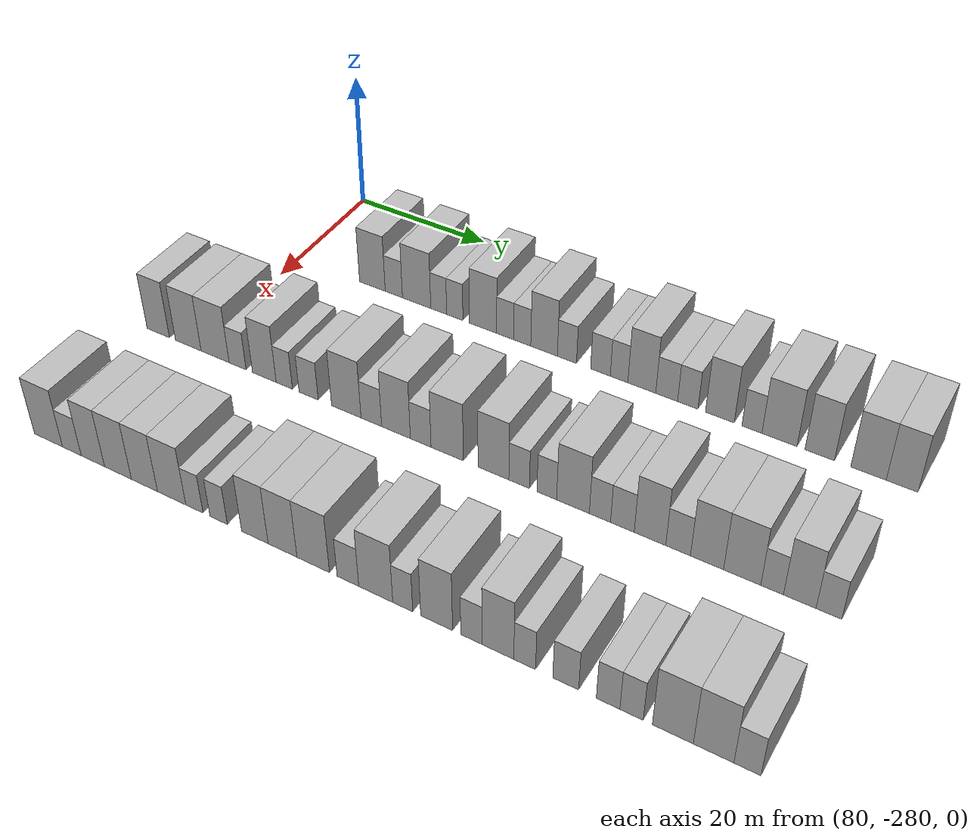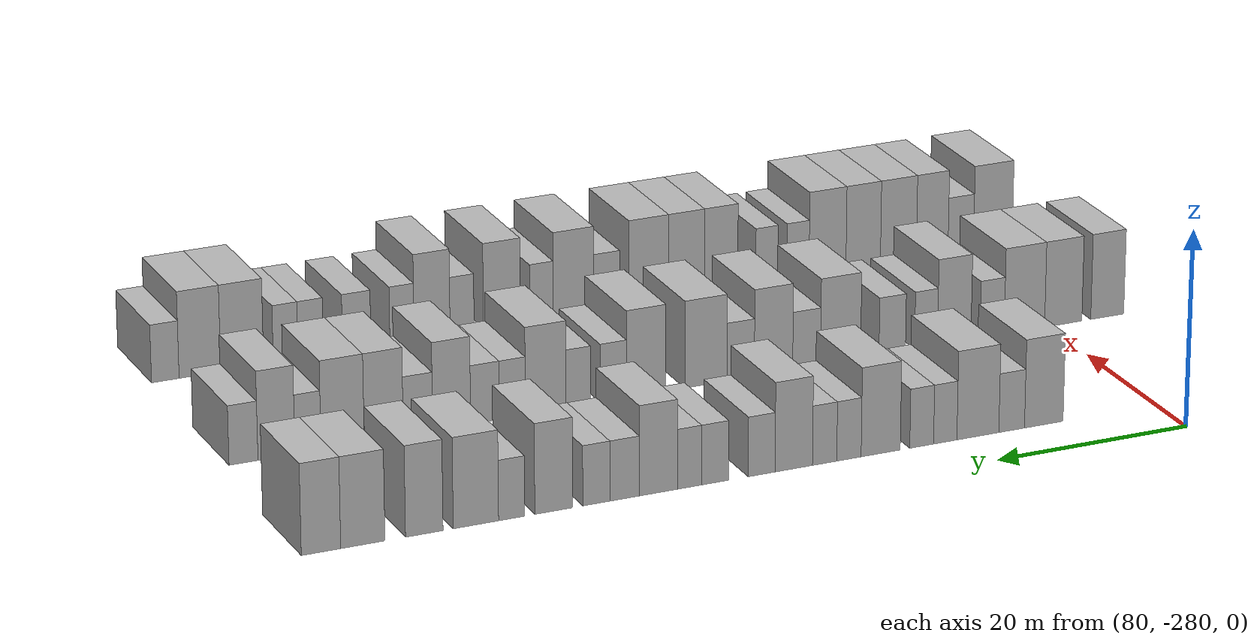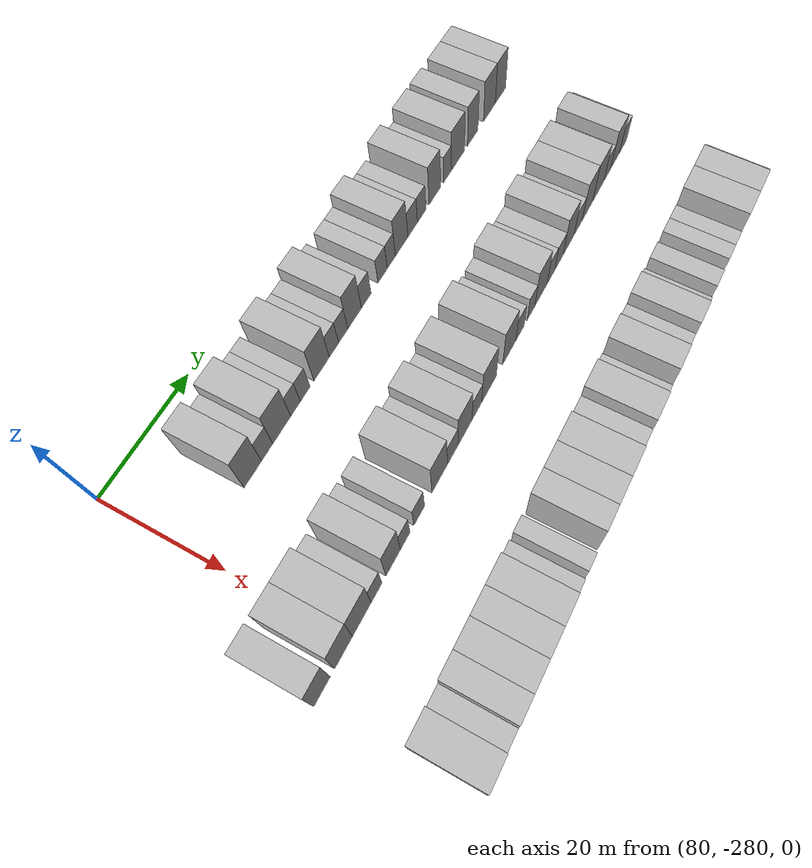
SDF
<sdf version="1.6">
 <world name="default">
  <model name="building_583">
   <static>1</static>
   <pose>91.0000 -267.9013 0 0.000000 0.000000 0.000000</pose>
   <link name="link">
    <pose>0 0 4.50 0 0 0</pose>
    <collision name="collision"><geometry><box><size>10.0000 4.1133 9.0000</size></box></geometry></collision>
    <visual name="visual">
     <cast_shadows>0</cast_shadows>
     <geometry><box><size>10.0000 4.1133 9.0000</size></box></geometry>
     <material>
      <script>
       <uri>model://HANNAS_wall/materials/scripts</uri>
       <uri>model://HANNAS_wall/materials/textures</uri>
       <name>vrc/HANNAS_wall</name>
      </script>
     </material>
    </visual>
   </link>
  </model>
  <model name="building_584">
   <static>1</static>
   <pose>91.0000 -264.4797 0 0.000000 0.000000 0.000000</pose>
   <link name="link">
    <pose>0 0 3.00 0 0 0</pose>
    <collision name="collision"><geometry><box><size>10.0000 2.7299 6.0000</size></box></geometry></collision>
    <visual name="visual">
     <cast_shadows>0</cast_shadows>
     <geometry><box><size>10.0000 2.7299 6.0000</size></box></geometry>
     <material>
      <script>
       <uri>model://HANNAS_wall/materials/scripts</uri>
       <uri>model://HANNAS_wall/materials/textures</uri>
       <name>vrc/HANNAS_wall</name>
      </script>
     </material>
    </visual>
   </link>
  </model>
  <model name="building_585">
   <static>1</static>
   <pose>91.0000 -260.8992 0 0.000000 0.000000 0.000000</pose>
   <link name="link">
    <pose>0 0 4.50 0 0 0</pose>
    <collision name="collision"><geometry><box><size>10.0000 4.4311 9.0000</size></box></geometry></collision>
    <visual name="visual">
     <cast_shadows>0</cast_shadows>
     <geometry><box><size>10.0000 4.4311 9.0000</size></box></geometry>
     <material>
      <script>
       <uri>model://HANNAS_wall/materials/scripts</uri>
       <uri>model://HANNAS_wall/materials/textures</uri>
       <name>vrc/HANNAS_wall</name>
      </script>
     </material>
    </visual>
   </link>
  </model>
  <model name="building_586">
   <static>1</static>
   <pose>91.0000 -257.4568 0 0.000000 0.000000 0.000000</pose>
   <link name="link">
    <pose>0 0 3.00 0 0 0</pose>
    <collision name="collision"><geometry><box><size>10.0000 2.4537 6.0000</size></box></geometry></collision>
    <visual name="visual">
     <cast_shadows>0</cast_shadows>
     <geometry><box><size>10.0000 2.4537 6.0000</size></box></geometry>
     <material>
      <script>
       <uri>model://HANNAS_wall/materials/scripts</uri>
       <uri>model://HANNAS_wall/materials/textures</uri>
       <name>vrc/HANNAS_wall</name>
      </script>
     </material>
    </visual>
   </link>
  </model>
  <model name="building_587">
   <static>1</static>
   <pose>91.0000 -254.9833 0 0.000000 0.000000 0.000000</pose>
   <link name="link">
    <pose>0 0 3.00 0 0 0</pose>
    <collision name="collision"><geometry><box><size>10.0000 2.4933 6.0000</size></box></geometry></collision>
    <visual name="visual">
     <cast_shadows>0</cast_shadows>
     <geometry><box><size>10.0000 2.4933 6.0000</size></box></geometry>
     <material>
      <script>
       <uri>model://HANNAS_wall/materials/scripts</uri>
       <uri>model://HANNAS_wall/materials/textures</uri>
       <name>vrc/HANNAS_wall</name>
      </script>
     </material>
    </visual>
   </link>
  </model>
  <model name="building_588">
   <static>1</static>
   <pose>91.0000 -250.6985 0 0.000000 0.000000 0.000000</pose>
   <link name="link">
    <pose>0 0 4.50 0 0 0</pose>
    <collision name="collision"><geometry><box><size>10.0000 4.0763 9.0000</size></box></geometry></collision>
    <visual name="visual">
     <cast_shadows>0</cast_shadows>
     <geometry><box><size>10.0000 4.0763 9.0000</size></box></geometry>
     <material>
      <script>
       <uri>model://HANNAS_wall/materials/scripts</uri>
       <uri>model://HANNAS_wall/materials/textures</uri>
       <name>vrc/HANNAS_wall</name>
      </script>
     </material>
    </visual>
   </link>
  </model>
  <model name="building_589">
   <static>1</static>
   <pose>91.0000 -247.3971 0 0.000000 0.000000 0.000000</pose>
   <link name="link">
    <pose>0 0 3.00 0 0 0</pose>
    <collision name="collision"><geometry><box><size>10.0000 2.5264 6.0000</size></box></geometry></collision>
    <visual name="visual">
     <cast_shadows>0</cast_shadows>
     <geometry><box><size>10.0000 2.5264 6.0000</size></box></geometry>
     <material>
      <script>
       <uri>model://HANNAS_wall/materials/scripts</uri>
       <uri>model://HANNAS_wall/materials/textures</uri>
       <name>vrc/HANNAS_wall</name>
      </script>
     </material>
    </visual>
   </link>
  </model>
  <model name="building_590">
   <static>1</static>
   <pose>91.0000 -244.8766 0 0.000000 0.000000 0.000000</pose>
   <link name="link">
    <pose>0 0 3.00 0 0 0</pose>
    <collision name="collision"><geometry><box><size>10.0000 2.5146 6.0000</size></box></geometry></collision>
    <visual name="visual">
     <cast_shadows>0</cast_shadows>
     <geometry><box><size>10.0000 2.5146 6.0000</size></box></geometry>
     <material>
      <script>
       <uri>model://HANNAS_wall/materials/scripts</uri>
       <uri>model://HANNAS_wall/materials/textures</uri>
       <name>vrc/HANNAS_wall</name>
      </script>
     </material>
    </visual>
   </link>
  </model>
  <model name="building_591">
   <static>1</static>
   <pose>91.0000 -241.6928 0 0.000000 0.000000 0.000000</pose>
   <link name="link">
    <pose>0 0 4.50 0 0 0</pose>
    <collision name="collision"><geometry><box><size>10.0000 3.8532 9.0000</size></box></geometry></collision>
    <visual name="visual">
     <cast_shadows>0</cast_shadows>
     <geometry><box><size>10.0000 3.8532 9.0000</size></box></geometry>
     <material>
      <script>
       <uri>model://HANNAS_wall/materials/scripts</uri>
       <uri>model://HANNAS_wall/materials/textures</uri>
       <name>vrc/HANNAS_wall</name>
      </script>
     </material>
    </visual>
   </link>
  </model>
  <model name="building_592">
   <static>1</static>
   <pose>91.0000 -238.3920 0 0.000000 0.000000 0.000000</pose>
   <link name="link">
    <pose>0 0 3.00 0 0 0</pose>
    <collision name="collision"><geometry><box><size>10.0000 2.7484 6.0000</size></box></geometry></collision>
    <visual name="visual">
     <cast_shadows>0</cast_shadows>
     <geometry><box><size>10.0000 2.7484 6.0000</size></box></geometry>
     <material>
      <script>
       <uri>model://HANNAS_wall/materials/scripts</uri>
       <uri>model://HANNAS_wall/materials/textures</uri>
       <name>vrc/HANNAS_wall</name>
      </script>
     </material>
    </visual>
   </link>
  </model>
  <model name="building_593">
   <static>1</static>
   <pose>91.0000 -233.6346 0 0.000000 0.000000 0.000000</pose>
   <link name="link">
    <pose>0 0 3.00 0 0 0</pose>
    <collision name="collision"><geometry><box><size>10.0000 2.7663 6.0000</size></box></geometry></collision>
    <visual name="visual">
     <cast_shadows>0</cast_shadows>
     <geometry><box><size>10.0000 2.7663 6.0000</size></box></geometry>
     <material>
      <script>
       <uri>model://HANNAS_wall/materials/scripts</uri>
       <uri>model://HANNAS_wall/materials/textures</uri>
       <name>vrc/HANNAS_wall</name>
      </script>
     </material>
    </visual>
   </link>
  </model>
  <model name="building_594">
   <static>1</static>
   <pose>91.0000 -231.0318 0 0.000000 0.000000 0.000000</pose>
   <link name="link">
    <pose>0 0 3.00 0 0 0</pose>
    <collision name="collision"><geometry><box><size>10.0000 2.4393 6.0000</size></box></geometry></collision>
    <visual name="visual">
     <cast_shadows>0</cast_shadows>
     <geometry><box><size>10.0000 2.4393 6.0000</size></box></geometry>
     <material>
      <script>
       <uri>model://HANNAS_wall/materials/scripts</uri>
       <uri>model://HANNAS_wall/materials/textures</uri>
       <name>vrc/HANNAS_wall</name>
      </script>
     </material>
    </visual>
   </link>
  </model>
  <model name="building_595">
   <static>1</static>
   <pose>91.0000 -227.8929 0 0.000000 0.000000 0.000000</pose>
   <link name="link">
    <pose>0 0 4.50 0 0 0</pose>
    <collision name="collision"><geometry><box><size>10.0000 3.8385 9.0000</size></box></geometry></collision>
    <visual name="visual">
     <cast_shadows>0</cast_shadows>
     <geometry><box><size>10.0000 3.8385 9.0000</size></box></geometry>
     <material>
      <script>
       <uri>model://HANNAS_wall/materials/scripts</uri>
       <uri>model://HANNAS_wall/materials/textures</uri>
       <name>vrc/HANNAS_wall</name>
      </script>
     </material>
    </visual>
   </link>
  </model>
  <model name="building_596">
   <static>1</static>
   <pose>91.0000 -224.5005 0 0.000000 0.000000 0.000000</pose>
   <link name="link">
    <pose>0 0 3.00 0 0 0</pose>
    <collision name="collision"><geometry><box><size>10.0000 2.9462 6.0000</size></box></geometry></collision>
    <visual name="visual">
     <cast_shadows>0</cast_shadows>
     <geometry><box><size>10.0000 2.9462 6.0000</size></box></geometry>
     <material>
      <script>
       <uri>model://HANNAS_wall/materials/scripts</uri>
       <uri>model://HANNAS_wall/materials/textures</uri>
       <name>vrc/HANNAS_wall</name>
      </script>
     </material>
    </visual>
   </link>
  </model>
  <model name="building_597">
   <static>1</static>
   <pose>91.0000 -221.6628 0 0.000000 0.000000 0.000000</pose>
   <link name="link">
    <pose>0 0 3.00 0 0 0</pose>
    <collision name="collision"><geometry><box><size>10.0000 2.7293 6.0000</size></box></geometry></collision>
    <visual name="visual">
     <cast_shadows>0</cast_shadows>
     <geometry><box><size>10.0000 2.7293 6.0000</size></box></geometry>
     <material>
      <script>
       <uri>model://HANNAS_wall/materials/scripts</uri>
       <uri>model://HANNAS_wall/materials/textures</uri>
       <name>vrc/HANNAS_wall</name>
      </script>
     </material>
    </visual>
   </link>
  </model>
  <model name="building_598">
   <static>1</static>
   <pose>91.0000 -217.4084 0 0.000000 0.000000 0.000000</pose>
   <link name="link">
    <pose>0 0 4.50 0 0 0</pose>
    <collision name="collision"><geometry><box><size>10.0000 3.7795 9.0000</size></box></geometry></collision>
    <visual name="visual">
     <cast_shadows>0</cast_shadows>
     <geometry><box><size>10.0000 3.7795 9.0000</size></box></geometry>
     <material>
      <script>
       <uri>model://HANNAS_wall/materials/scripts</uri>
       <uri>model://HANNAS_wall/materials/textures</uri>
       <name>vrc/HANNAS_wall</name>
      </script>
     </material>
    </visual>
   </link>
  </model>
  <model name="building_599">
   <static>1</static>
   <pose>91.0000 -213.2256 0 0.000000 0.000000 0.000000</pose>
   <link name="link">
    <pose>0 0 3.00 0 0 0</pose>
    <collision name="collision"><geometry><box><size>10.0000 2.5861 6.0000</size></box></geometry></collision>
    <visual name="visual">
     <cast_shadows>0</cast_shadows>
     <geometry><box><size>10.0000 2.5861 6.0000</size></box></geometry>
     <material>
      <script>
       <uri>model://HANNAS_wall/materials/scripts</uri>
       <uri>model://HANNAS_wall/materials/textures</uri>
       <name>vrc/HANNAS_wall</name>
      </script>
     </material>
    </visual>
   </link>
  </model>
  <model name="building_600">
   <static>1</static>
   <pose>91.0000 -209.7005 0 0.000000 0.000000 0.000000</pose>
   <link name="link">
    <pose>0 0 4.50 0 0 0</pose>
    <collision name="collision"><geometry><box><size>10.0000 4.4641 9.0000</size></box></geometry></collision>
    <visual name="visual">
     <cast_shadows>0</cast_shadows>
     <geometry><box><size>10.0000 4.4641 9.0000</size></box></geometry>
     <material>
      <script>
       <uri>model://HANNAS_wall/materials/scripts</uri>
       <uri>model://HANNAS_wall/materials/textures</uri>
       <name>vrc/HANNAS_wall</name>
      </script>
     </material>
    </visual>
   </link>
  </model>
  <model name="building_601">
   <static>1</static>
   <pose>91.0000 -204.6339 0 0.000000 0.000000 0.000000</pose>
   <link name="link">
    <pose>0 0 4.50 0 0 0</pose>
    <collision name="collision"><geometry><box><size>10.0000 3.6690 9.0000</size></box></geometry></collision>
    <visual name="visual">
     <cast_shadows>0</cast_shadows>
     <geometry><box><size>10.0000 3.6690 9.0000</size></box></geometry>
     <material>
      <script>
       <uri>model://HANNAS_wall/materials/scripts</uri>
       <uri>model://HANNAS_wall/materials/textures</uri>
       <name>vrc/HANNAS_wall</name>
      </script>
     </material>
    </visual>
   </link>
  </model>
  <model name="building_602">
   <static>1</static>
   <pose>91.0000 -198.6547 0 0.000000 0.000000 0.000000</pose>
   <link name="link">
    <pose>0 0 4.50 0 0 0</pose>
    <collision name="collision"><geometry><box><size>10.0000 4.2894 9.0000</size></box></geometry></collision>
    <visual name="visual">
     <cast_shadows>0</cast_shadows>
     <geometry><box><size>10.0000 4.2894 9.0000</size></box></geometry>
     <material>
      <script>
       <uri>model://HANNAS_wall/materials/scripts</uri>
       <uri>model://HANNAS_wall/materials/textures</uri>
       <name>vrc/HANNAS_wall</name>
      </script>
     </material>
    </visual>
   </link>
  </model>
  <model name="building_603">
   <static>1</static>
   <pose>91.0000 -194.6099 0 0.000000 0.000000 0.000000</pose>
   <link name="link">
    <pose>0 0 4.50 0 0 0</pose>
    <collision name="collision"><geometry><box><size>10.0000 3.8003 9.0000</size></box></geometry></collision>
    <visual name="visual">
     <cast_shadows>0</cast_shadows>
     <geometry><box><size>10.0000 3.8003 9.0000</size></box></geometry>
     <material>
      <script>
       <uri>model://HANNAS_wall/materials/scripts</uri>
       <uri>model://HANNAS_wall/materials/textures</uri>
       <name>vrc/HANNAS_wall</name>
      </script>
     </material>
    </visual>
   </link>
  </model>
  <model name="building_780">
   <static>1</static>
   <pose>113.0000 -286.4278 0 0.000000 0.000000 0.000000</pose>
   <link name="link">
    <pose>0 0 4.50 0 0 0</pose>
    <collision name="collision"><geometry><box><size>10.0000 3.6945 9.0000</size></box></geometry></collision>
    <visual name="visual">
     <cast_shadows>0</cast_shadows>
     <geometry><box><size>10.0000 3.6945 9.0000</size></box></geometry>
     <material>
      <script>
       <uri>model://HANNAS_wall/materials/scripts</uri>
       <uri>model://HANNAS_wall/materials/textures</uri>
       <name>vrc/HANNAS_wall</name>
      </script>
     </material>
    </visual>
   </link>
  </model>
  <model name="building_781">
   <static>1</static>
   <pose>113.0000 -281.5056 0 0.000000 0.000000 0.000000</pose>
   <link name="link">
    <pose>0 0 4.50 0 0 0</pose>
    <collision name="collision"><geometry><box><size>10.0000 4.1500 9.0000</size></box></geometry></collision>
    <visual name="visual">
     <cast_shadows>0</cast_shadows>
     <geometry><box><size>10.0000 4.1500 9.0000</size></box></geometry>
     <material>
      <script>
       <uri>model://HANNAS_wall/materials/scripts</uri>
       <uri>model://HANNAS_wall/materials/textures</uri>
       <name>vrc/HANNAS_wall</name>
      </script>
     </material>
    </visual>
   </link>
  </model>
  <model name="building_782">
   <static>1</static>
   <pose>113.0000 -277.1887 0 0.000000 0.000000 0.000000</pose>
   <link name="link">
    <pose>0 0 4.50 0 0 0</pose>
    <collision name="collision"><geometry><box><size>10.0000 4.4838 9.0000</size></box></geometry></collision>
    <visual name="visual">
     <cast_shadows>0</cast_shadows>
     <geometry><box><size>10.0000 4.4838 9.0000</size></box></geometry>
     <material>
      <script>
       <uri>model://HANNAS_wall/materials/scripts</uri>
       <uri>model://HANNAS_wall/materials/textures</uri>
       <name>vrc/HANNAS_wall</name>
      </script>
     </material>
    </visual>
   </link>
  </model>
  <model name="building_783">
   <static>1</static>
   <pose>113.0000 -273.6108 0 0.000000 0.000000 0.000000</pose>
   <link name="link">
    <pose>0 0 3.00 0 0 0</pose>
    <collision name="collision"><geometry><box><size>10.0000 2.6721 6.0000</size></box></geometry></collision>
    <visual name="visual">
     <cast_shadows>0</cast_shadows>
     <geometry><box><size>10.0000 2.6721 6.0000</size></box></geometry>
     <material>
      <script>
       <uri>model://HANNAS_wall/materials/scripts</uri>
       <uri>model://HANNAS_wall/materials/textures</uri>
       <name>vrc/HANNAS_wall</name>
      </script>
     </material>
    </visual>
   </link>
  </model>
  <model name="building_784">
   <static>1</static>
   <pose>113.0000 -269.4401 0 0.000000 0.000000 0.000000</pose>
   <link name="link">
    <pose>0 0 4.50 0 0 0</pose>
    <collision name="collision"><geometry><box><size>10.0000 3.6693 9.0000</size></box></geometry></collision>
    <visual name="visual">
     <cast_shadows>0</cast_shadows>
     <geometry><box><size>10.0000 3.6693 9.0000</size></box></geometry>
     <material>
      <script>
       <uri>model://HANNAS_wall/materials/scripts</uri>
       <uri>model://HANNAS_wall/materials/textures</uri>
       <name>vrc/HANNAS_wall</name>
      </script>
     </material>
    </visual>
   </link>
  </model>
  <model name="building_785">
   <static>1</static>
   <pose>113.0000 -266.3569 0 0.000000 0.000000 0.000000</pose>
   <link name="link">
    <pose>0 0 3.00 0 0 0</pose>
    <collision name="collision"><geometry><box><size>10.0000 2.4971 6.0000</size></box></geometry></collision>
    <visual name="visual">
     <cast_shadows>0</cast_shadows>
     <geometry><box><size>10.0000 2.4971 6.0000</size></box></geometry>
     <material>
      <script>
       <uri>model://HANNAS_wall/materials/scripts</uri>
       <uri>model://HANNAS_wall/materials/textures</uri>
       <name>vrc/HANNAS_wall</name>
      </script>
     </material>
    </visual>
   </link>
  </model>
  <model name="building_786">
   <static>1</static>
   <pose>113.0000 -262.6695 0 0.000000 0.000000 0.000000</pose>
   <link name="link">
    <pose>0 0 3.00 0 0 0</pose>
    <collision name="collision"><geometry><box><size>10.0000 2.8777 6.0000</size></box></geometry></collision>
    <visual name="visual">
     <cast_shadows>0</cast_shadows>
     <geometry><box><size>10.0000 2.8777 6.0000</size></box></geometry>
     <material>
      <script>
       <uri>model://HANNAS_wall/materials/scripts</uri>
       <uri>model://HANNAS_wall/materials/textures</uri>
       <name>vrc/HANNAS_wall</name>
      </script>
     </material>
    </visual>
   </link>
  </model>
  <model name="building_787">
   <static>1</static>
   <pose>113.0000 -257.0691 0 0.000000 0.000000 0.000000</pose>
   <link name="link">
    <pose>0 0 4.50 0 0 0</pose>
    <collision name="collision"><geometry><box><size>10.0000 4.3231 9.0000</size></box></geometry></collision>
    <visual name="visual">
     <cast_shadows>0</cast_shadows>
     <geometry><box><size>10.0000 4.3231 9.0000</size></box></geometry>
     <material>
      <script>
       <uri>model://HANNAS_wall/materials/scripts</uri>
       <uri>model://HANNAS_wall/materials/textures</uri>
       <name>vrc/HANNAS_wall</name>
      </script>
     </material>
    </visual>
   </link>
  </model>
  <model name="building_788">
   <static>1</static>
   <pose>113.0000 -253.4135 0 0.000000 0.000000 0.000000</pose>
   <link name="link">
    <pose>0 0 3.00 0 0 0</pose>
    <collision name="collision"><geometry><box><size>10.0000 2.9880 6.0000</size></box></geometry></collision>
    <visual name="visual">
     <cast_shadows>0</cast_shadows>
     <geometry><box><size>10.0000 2.9880 6.0000</size></box></geometry>
     <material>
      <script>
       <uri>model://HANNAS_wall/materials/scripts</uri>
       <uri>model://HANNAS_wall/materials/textures</uri>
       <name>vrc/HANNAS_wall</name>
      </script>
     </material>
    </visual>
   </link>
  </model>
  <model name="building_789">
   <static>1</static>
   <pose>113.0000 -249.8680 0 0.000000 0.000000 0.000000</pose>
   <link name="link">
    <pose>0 0 4.50 0 0 0</pose>
    <collision name="collision"><geometry><box><size>10.0000 4.1031 9.0000</size></box></geometry></collision>
    <visual name="visual">
     <cast_shadows>0</cast_shadows>
     <geometry><box><size>10.0000 4.1031 9.0000</size></box></geometry>
     <material>
      <script>
       <uri>model://HANNAS_wall/materials/scripts</uri>
       <uri>model://HANNAS_wall/materials/textures</uri>
       <name>vrc/HANNAS_wall</name>
      </script>
     </material>
    </visual>
   </link>
  </model>
  <model name="building_790">
   <static>1</static>
   <pose>113.0000 -246.3647 0 0.000000 0.000000 0.000000</pose>
   <link name="link">
    <pose>0 0 3.00 0 0 0</pose>
    <collision name="collision"><geometry><box><size>10.0000 2.9034 6.0000</size></box></geometry></collision>
    <visual name="visual">
     <cast_shadows>0</cast_shadows>
     <geometry><box><size>10.0000 2.9034 6.0000</size></box></geometry>
     <material>
      <script>
       <uri>model://HANNAS_wall/materials/scripts</uri>
       <uri>model://HANNAS_wall/materials/textures</uri>
       <name>vrc/HANNAS_wall</name>
      </script>
     </material>
    </visual>
   </link>
  </model>
  <model name="building_791">
   <static>1</static>
   <pose>113.0000 -242.6782 0 0.000000 0.000000 0.000000</pose>
   <link name="link">
    <pose>0 0 4.50 0 0 0</pose>
    <collision name="collision"><geometry><box><size>10.0000 4.4696 9.0000</size></box></geometry></collision>
    <visual name="visual">
     <cast_shadows>0</cast_shadows>
     <geometry><box><size>10.0000 4.4696 9.0000</size></box></geometry>
     <material>
      <script>
       <uri>model://HANNAS_wall/materials/scripts</uri>
       <uri>model://HANNAS_wall/materials/textures</uri>
       <name>vrc/HANNAS_wall</name>
      </script>
     </material>
    </visual>
   </link>
  </model>
  <model name="building_792">
   <static>1</static>
   <pose>113.0000 -236.3678 0 0.000000 0.000000 0.000000</pose>
   <link name="link">
    <pose>0 0 4.50 0 0 0</pose>
    <collision name="collision"><geometry><box><size>10.0000 4.1512 9.0000</size></box></geometry></collision>
    <visual name="visual">
     <cast_shadows>0</cast_shadows>
     <geometry><box><size>10.0000 4.1512 9.0000</size></box></geometry>
     <material>
      <script>
       <uri>model://HANNAS_wall/materials/scripts</uri>
       <uri>model://HANNAS_wall/materials/textures</uri>
       <name>vrc/HANNAS_wall</name>
      </script>
     </material>
    </visual>
   </link>
  </model>
  <model name="building_793">
   <static>1</static>
   <pose>113.0000 -232.9316 0 0.000000 0.000000 0.000000</pose>
   <link name="link">
    <pose>0 0 3.00 0 0 0</pose>
    <collision name="collision"><geometry><box><size>10.0000 2.7214 6.0000</size></box></geometry></collision>
    <visual name="visual">
     <cast_shadows>0</cast_shadows>
     <geometry><box><size>10.0000 2.7214 6.0000</size></box></geometry>
     <material>
      <script>
       <uri>model://HANNAS_wall/materials/scripts</uri>
       <uri>model://HANNAS_wall/materials/textures</uri>
       <name>vrc/HANNAS_wall</name>
      </script>
     </material>
    </visual>
   </link>
  </model>
  <model name="building_794">
   <static>1</static>
   <pose>113.0000 -229.2943 0 0.000000 0.000000 0.000000</pose>
   <link name="link">
    <pose>0 0 3.00 0 0 0</pose>
    <collision name="collision"><geometry><box><size>10.0000 2.5532 6.0000</size></box></geometry></collision>
    <visual name="visual">
     <cast_shadows>0</cast_shadows>
     <geometry><box><size>10.0000 2.5532 6.0000</size></box></geometry>
     <material>
      <script>
       <uri>model://HANNAS_wall/materials/scripts</uri>
       <uri>model://HANNAS_wall/materials/textures</uri>
       <name>vrc/HANNAS_wall</name>
      </script>
     </material>
    </visual>
   </link>
  </model>
  <model name="building_795">
   <static>1</static>
   <pose>113.0000 -225.9085 0 0.000000 0.000000 0.000000</pose>
   <link name="link">
    <pose>0 0 4.50 0 0 0</pose>
    <collision name="collision"><geometry><box><size>10.0000 4.2183 9.0000</size></box></geometry></collision>
    <visual name="visual">
     <cast_shadows>0</cast_shadows>
     <geometry><box><size>10.0000 4.2183 9.0000</size></box></geometry>
     <material>
      <script>
       <uri>model://HANNAS_wall/materials/scripts</uri>
       <uri>model://HANNAS_wall/materials/textures</uri>
       <name>vrc/HANNAS_wall</name>
      </script>
     </material>
    </visual>
   </link>
  </model>
  <model name="building_796">
   <static>1</static>
   <pose>113.0000 -222.4591 0 0.000000 0.000000 0.000000</pose>
   <link name="link">
    <pose>0 0 3.00 0 0 0</pose>
    <collision name="collision"><geometry><box><size>10.0000 2.6805 6.0000</size></box></geometry></collision>
    <visual name="visual">
     <cast_shadows>0</cast_shadows>
     <geometry><box><size>10.0000 2.6805 6.0000</size></box></geometry>
     <material>
      <script>
       <uri>model://HANNAS_wall/materials/scripts</uri>
       <uri>model://HANNAS_wall/materials/textures</uri>
       <name>vrc/HANNAS_wall</name>
      </script>
     </material>
    </visual>
   </link>
  </model>
  <model name="building_797">
   <static>1</static>
   <pose>113.0000 -219.6409 0 0.000000 0.000000 0.000000</pose>
   <link name="link">
    <pose>0 0 3.00 0 0 0</pose>
    <collision name="collision"><geometry><box><size>10.0000 2.9559 6.0000</size></box></geometry></collision>
    <visual name="visual">
     <cast_shadows>0</cast_shadows>
     <geometry><box><size>10.0000 2.9559 6.0000</size></box></geometry>
     <material>
      <script>
       <uri>model://HANNAS_wall/materials/scripts</uri>
       <uri>model://HANNAS_wall/materials/textures</uri>
       <name>vrc/HANNAS_wall</name>
      </script>
     </material>
    </visual>
   </link>
  </model>
  <model name="building_798">
   <static>1</static>
   <pose>113.0000 -216.2234 0 0.000000 0.000000 0.000000</pose>
   <link name="link">
    <pose>0 0 4.50 0 0 0</pose>
    <collision name="collision"><geometry><box><size>10.0000 3.8791 9.0000</size></box></geometry></collision>
    <visual name="visual">
     <cast_shadows>0</cast_shadows>
     <geometry><box><size>10.0000 3.8791 9.0000</size></box></geometry>
     <material>
      <script>
       <uri>model://HANNAS_wall/materials/scripts</uri>
       <uri>model://HANNAS_wall/materials/textures</uri>
       <name>vrc/HANNAS_wall</name>
      </script>
     </material>
    </visual>
   </link>
  </model>
  <model name="building_799">
   <static>1</static>
   <pose>113.0000 -212.7860 0 0.000000 0.000000 0.000000</pose>
   <link name="link">
    <pose>0 0 3.00 0 0 0</pose>
    <collision name="collision"><geometry><box><size>10.0000 2.9958 6.0000</size></box></geometry></collision>
    <visual name="visual">
     <cast_shadows>0</cast_shadows>
     <geometry><box><size>10.0000 2.9958 6.0000</size></box></geometry>
     <material>
      <script>
       <uri>model://HANNAS_wall/materials/scripts</uri>
       <uri>model://HANNAS_wall/materials/textures</uri>
       <name>vrc/HANNAS_wall</name>
      </script>
     </material>
    </visual>
   </link>
  </model>
  <model name="building_800">
   <static>1</static>
   <pose>113.0000 -209.3136 0 0.000000 0.000000 0.000000</pose>
   <link name="link">
    <pose>0 0 4.50 0 0 0</pose>
    <collision name="collision"><geometry><box><size>10.0000 3.9488 9.0000</size></box></geometry></collision>
    <visual name="visual">
     <cast_shadows>0</cast_shadows>
     <geometry><box><size>10.0000 3.9488 9.0000</size></box></geometry>
     <material>
      <script>
       <uri>model://HANNAS_wall/materials/scripts</uri>
       <uri>model://HANNAS_wall/materials/textures</uri>
       <name>vrc/HANNAS_wall</name>
      </script>
     </material>
    </visual>
   </link>
  </model>
  <model name="building_801">
   <static>1</static>
   <pose>113.0000 -205.1659 0 0.000000 0.000000 0.000000</pose>
   <link name="link">
    <pose>0 0 4.50 0 0 0</pose>
    <collision name="collision"><geometry><box><size>10.0000 4.3468 9.0000</size></box></geometry></collision>
    <visual name="visual">
     <cast_shadows>0</cast_shadows>
     <geometry><box><size>10.0000 4.3468 9.0000</size></box></geometry>
     <material>
      <script>
       <uri>model://HANNAS_wall/materials/scripts</uri>
       <uri>model://HANNAS_wall/materials/textures</uri>
       <name>vrc/HANNAS_wall</name>
      </script>
     </material>
    </visual>
   </link>
  </model>
  <model name="building_802">
   <static>1</static>
   <pose>113.0000 -201.6856 0 0.000000 0.000000 0.000000</pose>
   <link name="link">
    <pose>0 0 3.00 0 0 0</pose>
    <collision name="collision"><geometry><box><size>10.0000 2.6137 6.0000</size></box></geometry></collision>
    <visual name="visual">
     <cast_shadows>0</cast_shadows>
     <geometry><box><size>10.0000 2.6137 6.0000</size></box></geometry>
     <material>
      <script>
       <uri>model://HANNAS_wall/materials/scripts</uri>
       <uri>model://HANNAS_wall/materials/textures</uri>
       <name>vrc/HANNAS_wall</name>
      </script>
     </material>
    </visual>
   </link>
  </model>
  <model name="building_803">
   <static>1</static>
   <pose>113.0000 -198.5321 0 0.000000 0.000000 0.000000</pose>
   <link name="link">
    <pose>0 0 4.50 0 0 0</pose>
    <collision name="collision"><geometry><box><size>10.0000 3.6933 9.0000</size></box></geometry></collision>
    <visual name="visual">
     <cast_shadows>0</cast_shadows>
     <geometry><box><size>10.0000 3.6933 9.0000</size></box></geometry>
     <material>
      <script>
       <uri>model://HANNAS_wall/materials/scripts</uri>
       <uri>model://HANNAS_wall/materials/textures</uri>
       <name>vrc/HANNAS_wall</name>
      </script>
     </material>
    </visual>
   </link>
  </model>
  <model name="building_804">
   <static>1</static>
   <pose>113.0000 -195.2496 0 0.000000 0.000000 0.000000</pose>
   <link name="link">
    <pose>0 0 3.00 0 0 0</pose>
    <collision name="collision"><geometry><box><size>10.0000 2.8719 6.0000</size></box></geometry></collision>
    <visual name="visual">
     <cast_shadows>0</cast_shadows>
     <geometry><box><size>10.0000 2.8719 6.0000</size></box></geometry>
     <material>
      <script>
       <uri>model://HANNAS_wall/materials/scripts</uri>
       <uri>model://HANNAS_wall/materials/textures</uri>
       <name>vrc/HANNAS_wall</name>
      </script>
     </material>
    </visual>
   </link>
  </model>
  <model name="building_967">
   <static>1</static>
   <pose>135.0000 -284.9059 0 0.000000 0.000000 0.000000</pose>
   <link name="link">
    <pose>0 0 4.50 0 0 0</pose>
    <collision name="collision"><geometry><box><size>10.0000 4.4395 9.0000</size></box></geometry></collision>
    <visual name="visual">
     <cast_shadows>0</cast_shadows>
     <geometry><box><size>10.0000 4.4395 9.0000</size></box></geometry>
     <material>
      <script>
       <uri>model://HANNAS_wall/materials/scripts</uri>
       <uri>model://HANNAS_wall/materials/textures</uri>
       <name>vrc/HANNAS_wall</name>
      </script>
     </material>
    </visual>
   </link>
  </model>
  <model name="building_968">
   <static>1</static>
   <pose>135.0000 -281.2293 0 0.000000 0.000000 0.000000</pose>
   <link name="link">
    <pose>0 0 3.00 0 0 0</pose>
    <collision name="collision"><geometry><box><size>10.0000 2.9136 6.0000</size></box></geometry></collision>
    <visual name="visual">
     <cast_shadows>0</cast_shadows>
     <geometry><box><size>10.0000 2.9136 6.0000</size></box></geometry>
     <material>
      <script>
       <uri>model://HANNAS_wall/materials/scripts</uri>
       <uri>model://HANNAS_wall/materials/textures</uri>
       <name>vrc/HANNAS_wall</name>
      </script>
     </material>
    </visual>
   </link>
  </model>
  <model name="building_969">
   <static>1</static>
   <pose>135.0000 -277.9696 0 0.000000 0.000000 0.000000</pose>
   <link name="link">
    <pose>0 0 4.50 0 0 0</pose>
    <collision name="collision"><geometry><box><size>10.0000 3.6059 9.0000</size></box></geometry></collision>
    <visual name="visual">
     <cast_shadows>0</cast_shadows>
     <geometry><box><size>10.0000 3.6059 9.0000</size></box></geometry>
     <material>
      <script>
       <uri>model://HANNAS_wall/materials/scripts</uri>
       <uri>model://HANNAS_wall/materials/textures</uri>
       <name>vrc/HANNAS_wall</name>
      </script>
     </material>
    </visual>
   </link>
  </model>
  <model name="building_970">
   <static>1</static>
   <pose>135.0000 -274.1361 0 0.000000 0.000000 0.000000</pose>
   <link name="link">
    <pose>0 0 4.50 0 0 0</pose>
    <collision name="collision"><geometry><box><size>10.0000 4.0612 9.0000</size></box></geometry></collision>
    <visual name="visual">
     <cast_shadows>0</cast_shadows>
     <geometry><box><size>10.0000 4.0612 9.0000</size></box></geometry>
     <material>
      <script>
       <uri>model://HANNAS_wall/materials/scripts</uri>
       <uri>model://HANNAS_wall/materials/textures</uri>
       <name>vrc/HANNAS_wall</name>
      </script>
     </material>
    </visual>
   </link>
  </model>
  <model name="building_971">
   <static>1</static>
   <pose>135.0000 -270.1630 0 0.000000 0.000000 0.000000</pose>
   <link name="link">
    <pose>0 0 4.50 0 0 0</pose>
    <collision name="collision"><geometry><box><size>10.0000 3.8848 9.0000</size></box></geometry></collision>
    <visual name="visual">
     <cast_shadows>0</cast_shadows>
     <geometry><box><size>10.0000 3.8848 9.0000</size></box></geometry>
     <material>
      <script>
       <uri>model://HANNAS_wall/materials/scripts</uri>
       <uri>model://HANNAS_wall/materials/textures</uri>
       <name>vrc/HANNAS_wall</name>
      </script>
     </material>
    </visual>
   </link>
  </model>
  <model name="building_972">
   <static>1</static>
   <pose>135.0000 -266.1520 0 0.000000 0.000000 0.000000</pose>
   <link name="link">
    <pose>0 0 4.50 0 0 0</pose>
    <collision name="collision"><geometry><box><size>10.0000 4.1373 9.0000</size></box></geometry></collision>
    <visual name="visual">
     <cast_shadows>0</cast_shadows>
     <geometry><box><size>10.0000 4.1373 9.0000</size></box></geometry>
     <material>
      <script>
       <uri>model://HANNAS_wall/materials/scripts</uri>
       <uri>model://HANNAS_wall/materials/textures</uri>
       <name>vrc/HANNAS_wall</name>
      </script>
     </material>
    </visual>
   </link>
  </model>
  <model name="building_973">
   <static>1</static>
   <pose>135.0000 -262.8456 0 0.000000 0.000000 0.000000</pose>
   <link name="link">
    <pose>0 0 3.00 0 0 0</pose>
    <collision name="collision"><geometry><box><size>10.0000 2.4754 6.0000</size></box></geometry></collision>
    <visual name="visual">
     <cast_shadows>0</cast_shadows>
     <geometry><box><size>10.0000 2.4754 6.0000</size></box></geometry>
     <material>
      <script>
       <uri>model://HANNAS_wall/materials/scripts</uri>
       <uri>model://HANNAS_wall/materials/textures</uri>
       <name>vrc/HANNAS_wall</name>
      </script>
     </material>
    </visual>
   </link>
  </model>
  <model name="building_974">
   <static>1</static>
   <pose>135.0000 -259.3797 0 0.000000 0.000000 0.000000</pose>
   <link name="link">
    <pose>0 0 3.00 0 0 0</pose>
    <collision name="collision"><geometry><box><size>10.0000 2.4563 6.0000</size></box></geometry></collision>
    <visual name="visual">
     <cast_shadows>0</cast_shadows>
     <geometry><box><size>10.0000 2.4563 6.0000</size></box></geometry>
     <material>
      <script>
       <uri>model://HANNAS_wall/materials/scripts</uri>
       <uri>model://HANNAS_wall/materials/textures</uri>
       <name>vrc/HANNAS_wall</name>
      </script>
     </material>
    </visual>
   </link>
  </model>
  <model name="building_975">
   <static>1</static>
   <pose>135.0000 -254.3157 0 0.000000 0.000000 0.000000</pose>
   <link name="link">
    <pose>0 0 4.50 0 0 0</pose>
    <collision name="collision"><geometry><box><size>10.0000 3.6717 9.0000</size></box></geometry></collision>
    <visual name="visual">
     <cast_shadows>0</cast_shadows>
     <geometry><box><size>10.0000 3.6717 9.0000</size></box></geometry>
     <material>
      <script>
       <uri>model://HANNAS_wall/materials/scripts</uri>
       <uri>model://HANNAS_wall/materials/textures</uri>
       <name>vrc/HANNAS_wall</name>
      </script>
     </material>
    </visual>
   </link>
  </model>
  <model name="building_976">
   <static>1</static>
   <pose>135.0000 -250.5151 0 0.000000 0.000000 0.000000</pose>
   <link name="link">
    <pose>0 0 4.50 0 0 0</pose>
    <collision name="collision"><geometry><box><size>10.0000 3.9294 9.0000</size></box></geometry></collision>
    <visual name="visual">
     <cast_shadows>0</cast_shadows>
     <geometry><box><size>10.0000 3.9294 9.0000</size></box></geometry>
     <material>
      <script>
       <uri>model://HANNAS_wall/materials/scripts</uri>
       <uri>model://HANNAS_wall/materials/textures</uri>
       <name>vrc/HANNAS_wall</name>
      </script>
     </material>
    </visual>
   </link>
  </model>
  <model name="building_977">
   <static>1</static>
   <pose>135.0000 -246.3761 0 0.000000 0.000000 0.000000</pose>
   <link name="link">
    <pose>0 0 4.50 0 0 0</pose>
    <collision name="collision"><geometry><box><size>10.0000 4.3487 9.0000</size></box></geometry></collision>
    <visual name="visual">
     <cast_shadows>0</cast_shadows>
     <geometry><box><size>10.0000 4.3487 9.0000</size></box></geometry>
     <material>
      <script>
       <uri>model://HANNAS_wall/materials/scripts</uri>
       <uri>model://HANNAS_wall/materials/textures</uri>
       <name>vrc/HANNAS_wall</name>
      </script>
     </material>
    </visual>
   </link>
  </model>
  <model name="building_978">
   <static>1</static>
   <pose>135.0000 -241.7879 0 0.000000 0.000000 0.000000</pose>
   <link name="link">
    <pose>0 0 3.00 0 0 0</pose>
    <collision name="collision"><geometry><box><size>10.0000 2.8278 6.0000</size></box></geometry></collision>
    <visual name="visual">
     <cast_shadows>0</cast_shadows>
     <geometry><box><size>10.0000 2.8278 6.0000</size></box></geometry>
     <material>
      <script>
       <uri>model://HANNAS_wall/materials/scripts</uri>
       <uri>model://HANNAS_wall/materials/textures</uri>
       <name>vrc/HANNAS_wall</name>
      </script>
     </material>
    </visual>
   </link>
  </model>
  <model name="building_979">
   <static>1</static>
   <pose>135.0000 -238.1881 0 0.000000 0.000000 0.000000</pose>
   <link name="link">
    <pose>0 0 4.50 0 0 0</pose>
    <collision name="collision"><geometry><box><size>10.0000 4.3717 9.0000</size></box></geometry></collision>
    <visual name="visual">
     <cast_shadows>0</cast_shadows>
     <geometry><box><size>10.0000 4.3717 9.0000</size></box></geometry>
     <material>
      <script>
       <uri>model://HANNAS_wall/materials/scripts</uri>
       <uri>model://HANNAS_wall/materials/textures</uri>
       <name>vrc/HANNAS_wall</name>
      </script>
     </material>
    </visual>
   </link>
  </model>
  <model name="building_980">
   <static>1</static>
   <pose>135.0000 -234.7407 0 0.000000 0.000000 0.000000</pose>
   <link name="link">
    <pose>0 0 3.00 0 0 0</pose>
    <collision name="collision"><geometry><box><size>10.0000 2.5232 6.0000</size></box></geometry></collision>
    <visual name="visual">
     <cast_shadows>0</cast_shadows>
     <geometry><box><size>10.0000 2.5232 6.0000</size></box></geometry>
     <material>
      <script>
       <uri>model://HANNAS_wall/materials/scripts</uri>
       <uri>model://HANNAS_wall/materials/textures</uri>
       <name>vrc/HANNAS_wall</name>
      </script>
     </material>
    </visual>
   </link>
  </model>
  <model name="building_981">
   <static>1</static>
   <pose>135.0000 -230.5010 0 0.000000 0.000000 0.000000</pose>
   <link name="link">
    <pose>0 0 4.50 0 0 0</pose>
    <collision name="collision"><geometry><box><size>10.0000 3.9561 9.0000</size></box></geometry></collision>
    <visual name="visual">
     <cast_shadows>0</cast_shadows>
     <geometry><box><size>10.0000 3.9561 9.0000</size></box></geometry>
     <material>
      <script>
       <uri>model://HANNAS_wall/materials/scripts</uri>
       <uri>model://HANNAS_wall/materials/textures</uri>
       <name>vrc/HANNAS_wall</name>
      </script>
     </material>
    </visual>
   </link>
  </model>
  <model name="building_982">
   <static>1</static>
   <pose>135.0000 -226.2432 0 0.000000 0.000000 0.000000</pose>
   <link name="link">
    <pose>0 0 3.00 0 0 0</pose>
    <collision name="collision"><geometry><box><size>10.0000 2.5596 6.0000</size></box></geometry></collision>
    <visual name="visual">
     <cast_shadows>0</cast_shadows>
     <geometry><box><size>10.0000 2.5596 6.0000</size></box></geometry>
     <material>
      <script>
       <uri>model://HANNAS_wall/materials/scripts</uri>
       <uri>model://HANNAS_wall/materials/textures</uri>
       <name>vrc/HANNAS_wall</name>
      </script>
     </material>
    </visual>
   </link>
  </model>
  <model name="building_983">
   <static>1</static>
   <pose>135.0000 -223.0597 0 0.000000 0.000000 0.000000</pose>
   <link name="link">
    <pose>0 0 4.50 0 0 0</pose>
    <collision name="collision"><geometry><box><size>10.0000 3.8073 9.0000</size></box></geometry></collision>
    <visual name="visual">
     <cast_shadows>0</cast_shadows>
     <geometry><box><size>10.0000 3.8073 9.0000</size></box></geometry>
     <material>
      <script>
       <uri>model://HANNAS_wall/materials/scripts</uri>
       <uri>model://HANNAS_wall/materials/textures</uri>
       <name>vrc/HANNAS_wall</name>
      </script>
     </material>
    </visual>
   </link>
  </model>
  <model name="building_984">
   <static>1</static>
   <pose>135.0000 -219.8757 0 0.000000 0.000000 0.000000</pose>
   <link name="link">
    <pose>0 0 3.00 0 0 0</pose>
    <collision name="collision"><geometry><box><size>10.0000 2.5607 6.0000</size></box></geometry></collision>
    <visual name="visual">
     <cast_shadows>0</cast_shadows>
     <geometry><box><size>10.0000 2.5607 6.0000</size></box></geometry>
     <material>
      <script>
       <uri>model://HANNAS_wall/materials/scripts</uri>
       <uri>model://HANNAS_wall/materials/textures</uri>
       <name>vrc/HANNAS_wall</name>
      </script>
     </material>
    </visual>
   </link>
  </model>
  <model name="building_985">
   <static>1</static>
   <pose>135.0000 -215.1088 0 0.000000 0.000000 0.000000</pose>
   <link name="link">
    <pose>0 0 3.00 0 0 0</pose>
    <collision name="collision"><geometry><box><size>10.0000 2.9731 6.0000</size></box></geometry></collision>
    <visual name="visual">
     <cast_shadows>0</cast_shadows>
     <geometry><box><size>10.0000 2.9731 6.0000</size></box></geometry>
     <material>
      <script>
       <uri>model://HANNAS_wall/materials/scripts</uri>
       <uri>model://HANNAS_wall/materials/textures</uri>
       <name>vrc/HANNAS_wall</name>
      </script>
     </material>
    </visual>
   </link>
  </model>
  <model name="building_986">
   <static>1</static>
   <pose>135.0000 -210.3028 0 0.000000 0.000000 0.000000</pose>
   <link name="link">
    <pose>0 0 3.00 0 0 0</pose>
    <collision name="collision"><geometry><box><size>10.0000 2.6389 6.0000</size></box></geometry></collision>
    <visual name="visual">
     <cast_shadows>0</cast_shadows>
     <geometry><box><size>10.0000 2.6389 6.0000</size></box></geometry>
     <material>
      <script>
       <uri>model://HANNAS_wall/materials/scripts</uri>
       <uri>model://HANNAS_wall/materials/textures</uri>
       <name>vrc/HANNAS_wall</name>
      </script>
     </material>
    </visual>
   </link>
  </model>
  <model name="building_987">
   <static>1</static>
   <pose>135.0000 -207.6916 0 0.000000 0.000000 0.000000</pose>
   <link name="link">
    <pose>0 0 3.00 0 0 0</pose>
    <collision name="collision"><geometry><box><size>10.0000 2.5836 6.0000</size></box></geometry></collision>
    <visual name="visual">
     <cast_shadows>0</cast_shadows>
     <geometry><box><size>10.0000 2.5836 6.0000</size></box></geometry>
     <material>
      <script>
       <uri>model://HANNAS_wall/materials/scripts</uri>
       <uri>model://HANNAS_wall/materials/textures</uri>
       <name>vrc/HANNAS_wall</name>
      </script>
     </material>
    </visual>
   </link>
  </model>
  <model name="building_988">
   <static>1</static>
   <pose>135.0000 -203.1868 0 0.000000 0.000000 0.000000</pose>
   <link name="link">
    <pose>0 0 4.50 0 0 0</pose>
    <collision name="collision"><geometry><box><size>10.0000 4.4259 9.0000</size></box></geometry></collision>
    <visual name="visual">
     <cast_shadows>0</cast_shadows>
     <geometry><box><size>10.0000 4.4259 9.0000</size></box></geometry>
     <material>
      <script>
       <uri>model://HANNAS_wall/materials/scripts</uri>
       <uri>model://HANNAS_wall/materials/textures</uri>
       <name>vrc/HANNAS_wall</name>
      </script>
     </material>
    </visual>
   </link>
  </model>
  <model name="building_989">
   <static>1</static>
   <pose>135.0000 -198.8337 0 0.000000 0.000000 0.000000</pose>
   <link name="link">
    <pose>0 0 4.50 0 0 0</pose>
    <collision name="collision"><geometry><box><size>10.0000 4.2803 9.0000</size></box></geometry></collision>
    <visual name="visual">
     <cast_shadows>0</cast_shadows>
     <geometry><box><size>10.0000 4.2803 9.0000</size></box></geometry>
     <material>
      <script>
       <uri>model://HANNAS_wall/materials/scripts</uri>
       <uri>model://HANNAS_wall/materials/textures</uri>
       <name>vrc/HANNAS_wall</name>
      </script>
     </material>
    </visual>
   </link>
  </model>
  <model name="building_990">
   <static>1</static>
   <pose>135.0000 -195.2858 0 0.000000 0.000000 0.000000</pose>
   <link name="link">
    <pose>0 0 3.00 0 0 0</pose>
    <collision name="collision"><geometry><box><size>10.0000 2.8154 6.0000</size></box></geometry></collision>
    <visual name="visual">
     <cast_shadows>0</cast_shadows>
     <geometry><box><size>10.0000 2.8154 6.0000</size></box></geometry>
     <material>
      <script>
       <uri>model://HANNAS_wall/materials/scripts</uri>
       <uri>model://HANNAS_wall/materials/textures</uri>
       <name>vrc/HANNAS_wall</name>
      </script>
     </material>
    </visual>
   </link>
  </model>
 </world>
</sdf>
